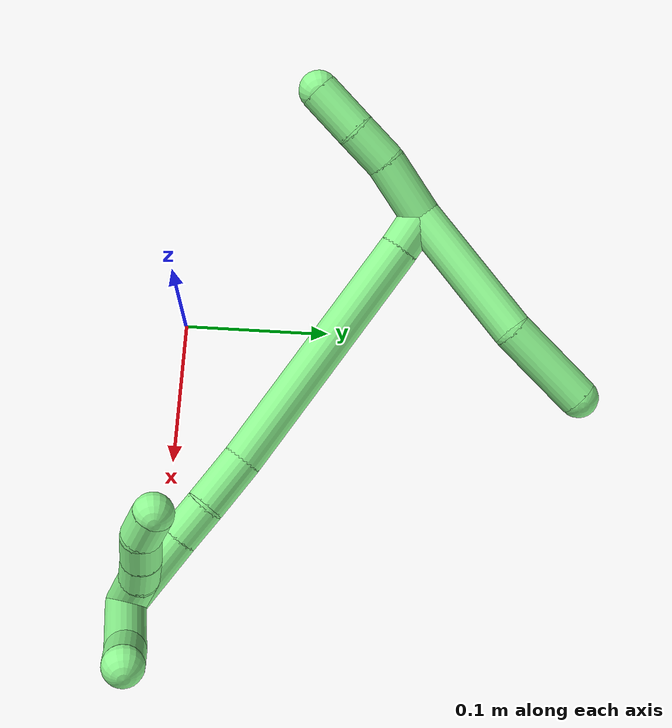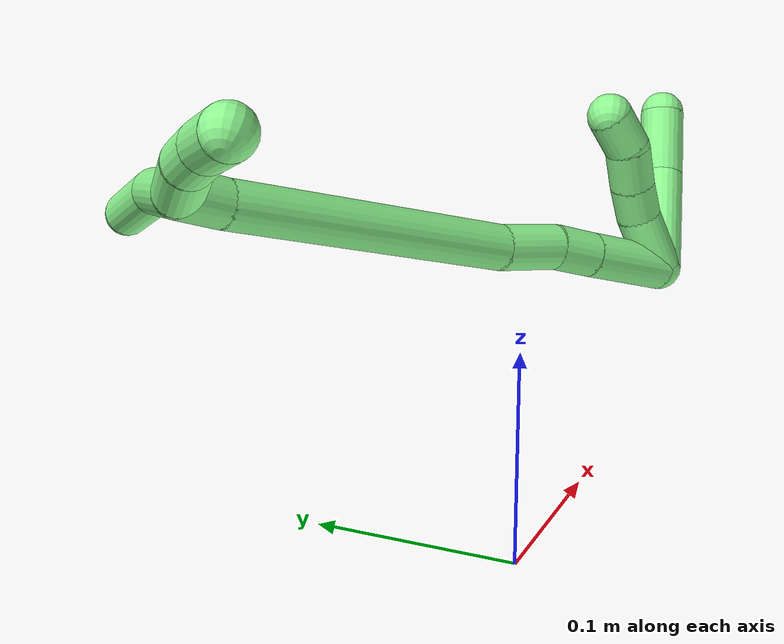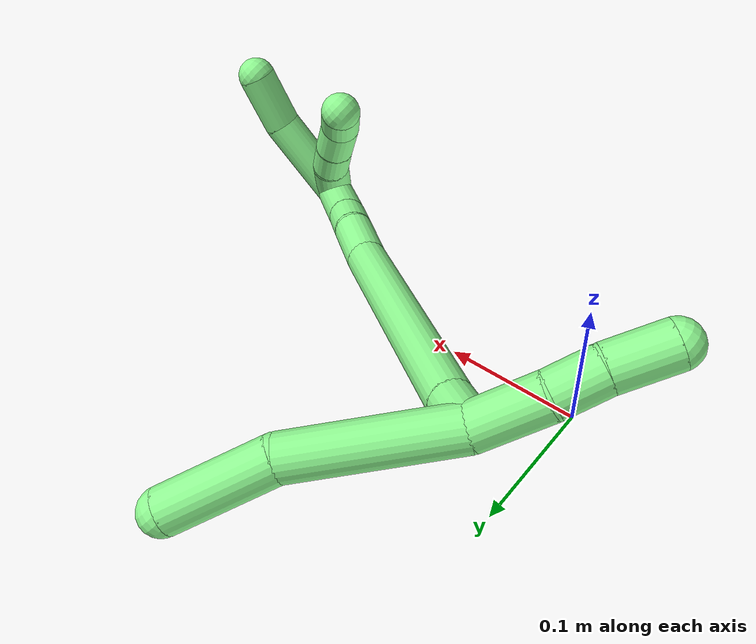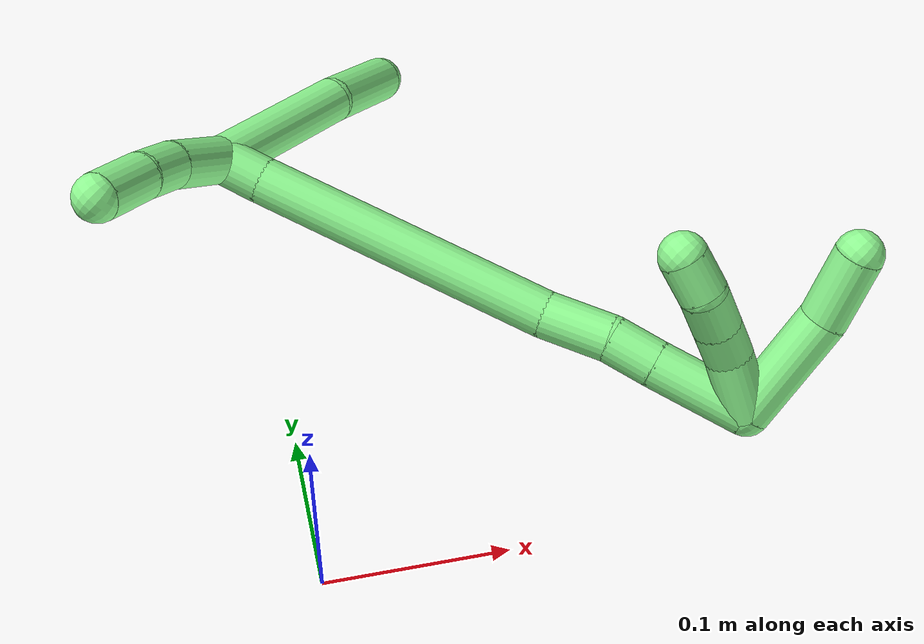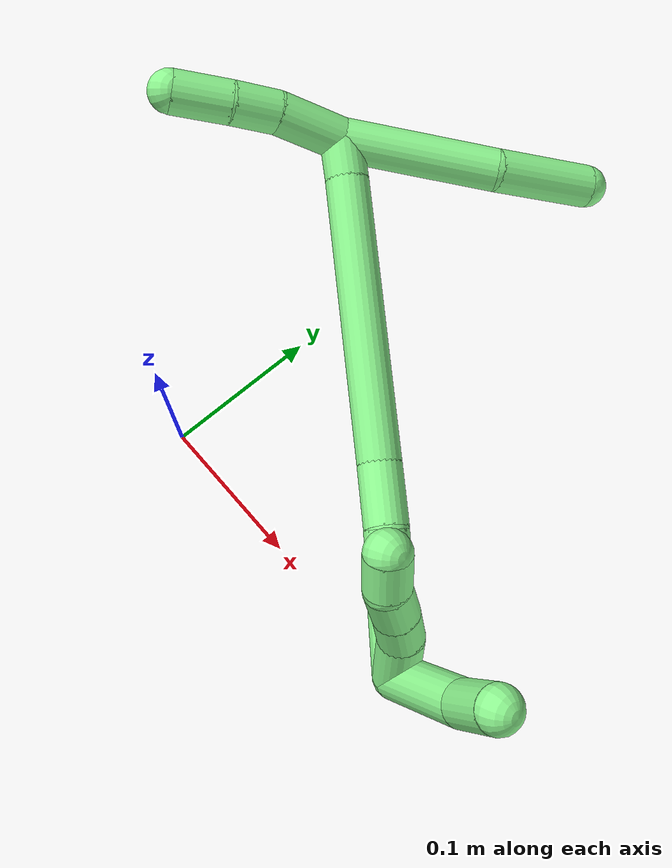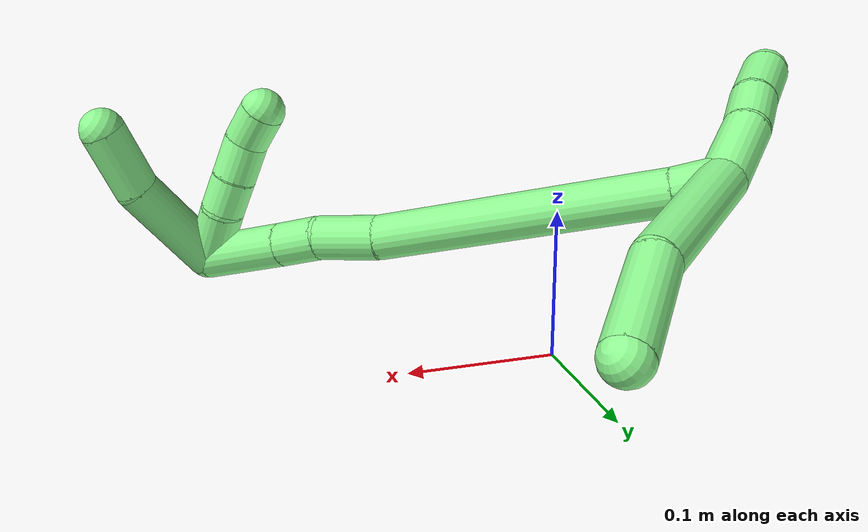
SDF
<sdf version="1.7">
 <world name="default">
  <model name="13">
   <static>0</static>
   <link name="13">
    <collision name="collision-cylinder-e_1_2_8">
     <pose>0.01698 0.032823 0.026179 -0.897535 0.384312 -0.186827</pose>
     <geometry><cylinder><radius>0.0125</radius><length>0.090577</length></cylinder></geometry>
     <surface>
      <friction><ode><mu>1.16</mu><mu2>1.16</mu2><slip1>0</slip1><slip2>0</slip2></ode></friction>
      <contact><ode><kp>1e+06</kp><kd>1</kd><max_vel>0</max_vel><min_depth>0.001</min_depth></ode></contact>
     </surface>
    </collision>
    <visual name="visual-cylinder-e_1_2_8">
     <pose>0.01698 0.032823 0.026179 -0.897535 0.384312 -0.186827</pose>
     <geometry><cylinder><radius>0.0125</radius><length>0.090577</length></cylinder></geometry>
     <material><ambient>0.564706 0.984314 0.572549 1</ambient></material>
    </visual>
    <collision name="collision-cylinder-e_2_8_6">
     <pose>0.045158 0.091253 0.062444 -1.19559 0.386471 -0.264914</pose>
     <geometry><cylinder><radius>0.0125</radius><length>0.059423</length></cylinder></geometry>
     <surface>
      <friction><ode><mu>1.16</mu><mu2>1.16</mu2><slip1>0</slip1><slip2>0</slip2></ode></friction>
      <contact><ode><kp>1e+06</kp><kd>1</kd><max_vel>0</max_vel><min_depth>0.001</min_depth></ode></contact>
     </surface>
    </collision>
    <visual name="visual-cylinder-e_2_8_6">
     <pose>0.045158 0.091253 0.062444 -1.19559 0.386471 -0.264914</pose>
     <geometry><cylinder><radius>0.0125</radius><length>0.059423</length></cylinder></geometry>
     <material><ambient>0.564706 0.984314 0.572549 1</ambient></material>
    </visual>
    <collision name="collision-cylinder-e_1_2_9">
     <pose>-0.011153 -0.015556 -0.006059 1.94221 -0.588993 -0.835121</pose>
     <geometry><cylinder><radius>0.0125</radius><length>0.040154</length></cylinder></geometry>
     <surface>
      <friction><ode><mu>1.16</mu><mu2>1.16</mu2><slip1>0</slip1><slip2>0</slip2></ode></friction>
      <contact><ode><kp>1e+06</kp><kd>1</kd><max_vel>0</max_vel><min_depth>0.001</min_depth></ode></contact>
     </surface>
    </collision>
    <visual name="visual-cylinder-e_1_2_9">
     <pose>-0.011153 -0.015556 -0.006059 1.94221 -0.588993 -0.835121</pose>
     <geometry><cylinder><radius>0.0125</radius><length>0.040154</length></cylinder></geometry>
     <material><ambient>0.564706 0.984314 0.572549 1</ambient></material>
    </visual>
    <collision name="collision-cylinder-e_2_9_10">
     <pose>-0.027613 -0.042527 -0.01628 1.92044 -0.411774 -0.580066</pose>
     <geometry><cylinder><radius>0.0125</radius><length>0.026517</length></cylinder></geometry>
     <surface>
      <friction><ode><mu>1.16</mu><mu2>1.16</mu2><slip1>0</slip1><slip2>0</slip2></ode></friction>
      <contact><ode><kp>1e+06</kp><kd>1</kd><max_vel>0</max_vel><min_depth>0.001</min_depth></ode></contact>
     </surface>
    </collision>
    <visual name="visual-cylinder-e_2_9_10">
     <pose>-0.027613 -0.042527 -0.01628 1.92044 -0.411774 -0.580066</pose>
     <geometry><cylinder><radius>0.0125</radius><length>0.026517</length></cylinder></geometry>
     <material><ambient>0.564706 0.984314 0.572549 1</ambient></material>
    </visual>
    <collision name="collision-cylinder-e_3_10_5">
     <pose>-0.039116 -0.06765 -0.02761 2.05259 -0.380988 -0.61656</pose>
     <geometry><cylinder><radius>0.0125</radius><length>0.033329</length></cylinder></geometry>
     <surface>
      <friction><ode><mu>1.16</mu><mu2>1.16</mu2><slip1>0</slip1><slip2>0</slip2></ode></friction>
      <contact><ode><kp>1e+06</kp><kd>1</kd><max_vel>0</max_vel><min_depth>0.001</min_depth></ode></contact>
     </surface>
    </collision>
    <visual name="visual-cylinder-e_3_10_5">
     <pose>-0.039116 -0.06765 -0.02761 2.05259 -0.380988 -0.61656</pose>
     <geometry><cylinder><radius>0.0125</radius><length>0.033329</length></cylinder></geometry>
     <material><ambient>0.564706 0.984314 0.572549 1</ambient></material>
    </visual>
    <collision name="collision-cylinder-e_1_2_11">
     <pose>0.010992 -0.003579 0.003724 0.76558 1.13155 0.500659</pose>
     <geometry><cylinder><radius>0.0125</radius><length>0.024289</length></cylinder></geometry>
     <surface>
      <friction><ode><mu>1.16</mu><mu2>1.16</mu2><slip1>0</slip1><slip2>0</slip2></ode></friction>
      <contact><ode><kp>1e+06</kp><kd>1</kd><max_vel>0</max_vel><min_depth>0.001</min_depth></ode></contact>
     </surface>
    </collision>
    <visual name="visual-cylinder-e_1_2_11">
     <pose>0.010992 -0.003579 0.003724 0.76558 1.13155 0.500659</pose>
     <geometry><cylinder><radius>0.0125</radius><length>0.024289</length></cylinder></geometry>
     <material><ambient>0.564706 0.984314 0.572549 1</ambient></material>
    </visual>
    <collision name="collision-cylinder-e_2_11_12">
     <pose>0.093003 -0.03586 0.034802 0.809441 1.0616 0.492687</pose>
     <geometry><cylinder><radius>0.0125</radius><length>0.162677</length></cylinder></geometry>
     <surface>
      <friction><ode><mu>1.16</mu><mu2>1.16</mu2><slip1>0</slip1><slip2>0</slip2></ode></friction>
      <contact><ode><kp>1e+06</kp><kd>1</kd><max_vel>0</max_vel><min_depth>0.001</min_depth></ode></contact>
     </surface>
    </collision>
    <visual name="visual-cylinder-e_2_11_12">
     <pose>0.093003 -0.03586 0.034802 0.809441 1.0616 0.492687</pose>
     <geometry><cylinder><radius>0.0125</radius><length>0.162677</length></cylinder></geometry>
     <material><ambient>0.564706 0.984314 0.572549 1</ambient></material>
    </visual>
    <collision name="collision-cylinder-e_3_12_13">
     <pose>0.17838 -0.072257 0.069947 0.77916 0.919268 0.400992</pose>
     <geometry><cylinder><radius>0.0125</radius><length>0.036112</length></cylinder></geometry>
     <surface>
      <friction><ode><mu>1.16</mu><mu2>1.16</mu2><slip1>0</slip1><slip2>0</slip2></ode></friction>
      <contact><ode><kp>1e+06</kp><kd>1</kd><max_vel>0</max_vel><min_depth>0.001</min_depth></ode></contact>
     </surface>
    </collision>
    <visual name="visual-cylinder-e_3_12_13">
     <pose>0.17838 -0.072257 0.069947 0.77916 0.919268 0.400992</pose>
     <geometry><cylinder><radius>0.0125</radius><length>0.036112</length></cylinder></geometry>
     <material><ambient>0.564706 0.984314 0.572549 1</ambient></material>
    </visual>
    <collision name="collision-cylinder-e_4_13_14">
     <pose>0.203976 -0.08491 0.081187 0.962951 1.07761 0.605489</pose>
     <geometry><cylinder><radius>0.0125</radius><length>0.025519</length></cylinder></geometry>
     <surface>
      <friction><ode><mu>1.16</mu><mu2>1.16</mu2><slip1>0</slip1><slip2>0</slip2></ode></friction>
      <contact><ode><kp>1e+06</kp><kd>1</kd><max_vel>0</max_vel><min_depth>0.001</min_depth></ode></contact>
     </surface>
    </collision>
    <visual name="visual-cylinder-e_4_13_14">
     <pose>0.203976 -0.08491 0.081187 0.962951 1.07761 0.605489</pose>
     <geometry><cylinder><radius>0.0125</radius><length>0.025519</length></cylinder></geometry>
     <material><ambient>0.564706 0.984314 0.572549 1</ambient></material>
    </visual>
    <collision name="collision-cylinder-e_5_14_1">
     <pose>0.237708 -0.099636 0.092335 0.903321 1.06572 0.557309</pose>
     <geometry><cylinder><radius>0.0125</radius><length>0.051403</length></cylinder></geometry>
     <surface>
      <friction><ode><mu>1.16</mu><mu2>1.16</mu2><slip1>0</slip1><slip2>0</slip2></ode></friction>
      <contact><ode><kp>1e+06</kp><kd>1</kd><max_vel>0</max_vel><min_depth>0.001</min_depth></ode></contact>
     </surface>
    </collision>
    <visual name="visual-cylinder-e_5_14_1">
     <pose>0.237708 -0.099636 0.092335 0.903321 1.06572 0.557309</pose>
     <geometry><cylinder><radius>0.0125</radius><length>0.051403</length></cylinder></geometry>
     <material><ambient>0.564706 0.984314 0.572549 1</ambient></material>
    </visual>
    <collision name="collision-cylinder-e_1_1_15">
     <pose>0.244898 -0.110532 0.107694 0.146268 -1.10235 -0.090014</pose>
     <geometry><cylinder><radius>0.0125</radius><length>0.034299</length></cylinder></geometry>
     <surface>
      <friction><ode><mu>1.16</mu><mu2>1.16</mu2><slip1>0</slip1><slip2>0</slip2></ode></friction>
      <contact><ode><kp>1e+06</kp><kd>1</kd><max_vel>0</max_vel><min_depth>0.001</min_depth></ode></contact>
     </surface>
    </collision>
    <visual name="visual-cylinder-e_1_1_15">
     <pose>0.244898 -0.110532 0.107694 0.146268 -1.10235 -0.090014</pose>
     <geometry><cylinder><radius>0.0125</radius><length>0.034299</length></cylinder></geometry>
     <material><ambient>0.564706 0.984314 0.572549 1</ambient></material>
    </visual>
    <collision name="collision-cylinder-e_2_15_16">
     <pose>0.220312 -0.114333 0.118947 0.63971 -1.12139 -0.410124</pose>
     <geometry><cylinder><radius>0.0125</radius><length>0.020615</length></cylinder></geometry>
     <surface>
      <friction><ode><mu>1.16</mu><mu2>1.16</mu2><slip1>0</slip1><slip2>0</slip2></ode></friction>
      <contact><ode><kp>1e+06</kp><kd>1</kd><max_vel>0</max_vel><min_depth>0.001</min_depth></ode></contact>
     </surface>
    </collision>
    <visual name="visual-cylinder-e_2_15_16">
     <pose>0.220312 -0.114333 0.118947 0.63971 -1.12139 -0.410124</pose>
     <geometry><cylinder><radius>0.0125</radius><length>0.020615</length></cylinder></geometry>
     <material><ambient>0.564706 0.984314 0.572549 1</ambient></material>
    </visual>
    <collision name="collision-cylinder-e_3_16_17">
     <pose>0.200719 -0.120759 0.12639 0.772403 -1.09001 -0.483394</pose>
     <geometry><cylinder><radius>0.0125</radius><length>0.023253</length></cylinder></geometry>
     <surface>
      <friction><ode><mu>1.16</mu><mu2>1.16</mu2><slip1>0</slip1><slip2>0</slip2></ode></friction>
      <contact><ode><kp>1e+06</kp><kd>1</kd><max_vel>0</max_vel><min_depth>0.001</min_depth></ode></contact>
     </surface>
    </collision>
    <visual name="visual-cylinder-e_3_16_17">
     <pose>0.200719 -0.120759 0.12639 0.772403 -1.09001 -0.483394</pose>
     <geometry><cylinder><radius>0.0125</radius><length>0.023253</length></cylinder></geometry>
     <material><ambient>0.564706 0.984314 0.572549 1</ambient></material>
    </visual>
    <collision name="collision-cylinder-e_4_17_4">
     <pose>0.179973 -0.124502 0.133436 -0.002783 -1.2738 0.002059</pose>
     <geometry><cylinder><radius>0.0125</radius><length>0.021833</length></cylinder></geometry>
     <surface>
      <friction><ode><mu>1.16</mu><mu2>1.16</mu2><slip1>0</slip1><slip2>0</slip2></ode></friction>
      <contact><ode><kp>1e+06</kp><kd>1</kd><max_vel>0</max_vel><min_depth>0.001</min_depth></ode></contact>
     </surface>
    </collision>
    <visual name="visual-cylinder-e_4_17_4">
     <pose>0.179973 -0.124502 0.133436 -0.002783 -1.2738 0.002059</pose>
     <geometry><cylinder><radius>0.0125</radius><length>0.021833</length></cylinder></geometry>
     <material><ambient>0.564706 0.984314 0.572549 1</ambient></material>
    </visual>
    <collision name="collision-cylinder-e_1_1_18">
     <pose>0.254873 -0.112469 0.130145 0.101464 -0.174233 -0.008869</pose>
     <geometry><cylinder><radius>0.0125</radius><length>0.061464</length></cylinder></geometry>
     <surface>
      <friction><ode><mu>1.16</mu><mu2>1.16</mu2><slip1>0</slip1><slip2>0</slip2></ode></friction>
      <contact><ode><kp>1e+06</kp><kd>1</kd><max_vel>0</max_vel><min_depth>0.001</min_depth></ode></contact>
     </surface>
    </collision>
    <visual name="visual-cylinder-e_1_1_18">
     <pose>0.254873 -0.112469 0.130145 0.101464 -0.174233 -0.008869</pose>
     <geometry><cylinder><radius>0.0125</radius><length>0.061464</length></cylinder></geometry>
     <material><ambient>0.564706 0.984314 0.572549 1</ambient></material>
    </visual>
    <collision name="collision-cylinder-e_2_18_3">
     <pose>0.241834 -0.119435 0.177477 0.222723 -0.411761 -0.046698</pose>
     <geometry><cylinder><radius>0.0125</radius><length>0.038536</length></cylinder></geometry>
     <surface>
      <friction><ode><mu>1.16</mu><mu2>1.16</mu2><slip1>0</slip1><slip2>0</slip2></ode></friction>
      <contact><ode><kp>1e+06</kp><kd>1</kd><max_vel>0</max_vel><min_depth>0.001</min_depth></ode></contact>
     </surface>
    </collision>
    <visual name="visual-cylinder-e_2_18_3">
     <pose>0.241834 -0.119435 0.177477 0.222723 -0.411761 -0.046698</pose>
     <geometry><cylinder><radius>0.0125</radius><length>0.038536</length></cylinder></geometry>
     <material><ambient>0.564706 0.984314 0.572549 1</ambient></material>
    </visual>
    <collision name="collision-sphere-3">
     <pose>0.234122 -0.123335 0.194698 0 -0 0</pose>
     <geometry><sphere><radius>0.0125</radius></sphere></geometry>
     <surface>
      <friction><ode><mu>1.16</mu><mu2>1.16</mu2><slip1>0</slip1><slip2>0</slip2></ode></friction>
      <contact><ode><kp>1e+06</kp><kd>1</kd><max_vel>0</max_vel><min_depth>0.001</min_depth></ode></contact>
     </surface>
    </collision>
    <visual name="visual-sphere-3">
     <pose>0.234122 -0.123335 0.194698 0 -0 0</pose>
     <geometry><sphere><radius>0.0125</radius></sphere></geometry>
     <material><ambient>0.564706 0.984314 0.572549 1</ambient></material>
    </visual>
    <collision name="collision-sphere-5">
     <pose>-0.045313 -0.081359 -0.034778 0 -0 0</pose>
     <geometry><sphere><radius>0.0125</radius></sphere></geometry>
     <surface>
      <friction><ode><mu>1.16</mu><mu2>1.16</mu2><slip1>0</slip1><slip2>0</slip2></ode></friction>
      <contact><ode><kp>1e+06</kp><kd>1</kd><max_vel>0</max_vel><min_depth>0.001</min_depth></ode></contact>
     </surface>
    </collision>
    <visual name="visual-sphere-5">
     <pose>-0.045313 -0.081359 -0.034778 0 -0 0</pose>
     <geometry><sphere><radius>0.0125</radius></sphere></geometry>
     <material><ambient>0.564706 0.984314 0.572549 1</ambient></material>
    </visual>
    <collision name="collision-sphere-10">
     <pose>-0.03292 -0.053942 -0.020442 0 -0 0</pose>
     <geometry><sphere><radius>0.0125</radius></sphere></geometry>
     <surface>
      <friction><ode><mu>1.16</mu><mu2>1.16</mu2><slip1>0</slip1><slip2>0</slip2></ode></friction>
      <contact><ode><kp>1e+06</kp><kd>1</kd><max_vel>0</max_vel><min_depth>0.001</min_depth></ode></contact>
     </surface>
    </collision>
    <visual name="visual-sphere-10">
     <pose>-0.03292 -0.053942 -0.020442 0 -0 0</pose>
     <geometry><sphere><radius>0.0125</radius></sphere></geometry>
     <material><ambient>0.564706 0.984314 0.572549 1</ambient></material>
    </visual>
    <collision name="collision-sphere-6">
     <pose>0.056357 0.116858 0.072529 0 -0 0</pose>
     <geometry><sphere><radius>0.0125</radius></sphere></geometry>
     <surface>
      <friction><ode><mu>1.16</mu><mu2>1.16</mu2><slip1>0</slip1><slip2>0</slip2></ode></friction>
      <contact><ode><kp>1e+06</kp><kd>1</kd><max_vel>0</max_vel><min_depth>0.001</min_depth></ode></contact>
     </surface>
    </collision>
    <visual name="visual-sphere-6">
     <pose>0.056357 0.116858 0.072529 0 -0 0</pose>
     <geometry><sphere><radius>0.0125</radius></sphere></geometry>
     <material><ambient>0.564706 0.984314 0.572549 1</ambient></material>
    </visual>
    <collision name="collision-sphere-9">
     <pose>-0.022307 -0.031112 -0.012118 0 -0 0</pose>
     <geometry><sphere><radius>0.0125</radius></sphere></geometry>
     <surface>
      <friction><ode><mu>1.16</mu><mu2>1.16</mu2><slip1>0</slip1><slip2>0</slip2></ode></friction>
      <contact><ode><kp>1e+06</kp><kd>1</kd><max_vel>0</max_vel><min_depth>0.001</min_depth></ode></contact>
     </surface>
    </collision>
    <visual name="visual-sphere-9">
     <pose>-0.022307 -0.031112 -0.012118 0 -0 0</pose>
     <geometry><sphere><radius>0.0125</radius></sphere></geometry>
     <material><ambient>0.564706 0.984314 0.572549 1</ambient></material>
    </visual>
    <collision name="collision-sphere-2">
     <geometry><sphere><radius>0.0125</radius></sphere></geometry>
     <surface>
      <friction><ode><mu>1.16</mu><mu2>1.16</mu2><slip1>0</slip1><slip2>0</slip2></ode></friction>
      <contact><ode><kp>1e+06</kp><kd>1</kd><max_vel>0</max_vel><min_depth>0.001</min_depth></ode></contact>
     </surface>
    </collision>
    <visual name="visual-sphere-2">
     <geometry><sphere><radius>0.0125</radius></sphere></geometry>
     <material><ambient>0.564706 0.984314 0.572549 1</ambient></material>
    </visual>
    <collision name="collision-sphere-8">
     <pose>0.033959 0.065647 0.052358 0 -0 0</pose>
     <geometry><sphere><radius>0.0125</radius></sphere></geometry>
     <surface>
      <friction><ode><mu>1.16</mu><mu2>1.16</mu2><slip1>0</slip1><slip2>0</slip2></ode></friction>
      <contact><ode><kp>1e+06</kp><kd>1</kd><max_vel>0</max_vel><min_depth>0.001</min_depth></ode></contact>
     </surface>
    </collision>
    <visual name="visual-sphere-8">
     <pose>0.033959 0.065647 0.052358 0 -0 0</pose>
     <geometry><sphere><radius>0.0125</radius></sphere></geometry>
     <material><ambient>0.564706 0.984314 0.572549 1</ambient></material>
    </visual>
    <collision name="collision-sphere-11">
     <pose>0.021984 -0.007158 0.007447 0 -0 0</pose>
     <geometry><sphere><radius>0.0125</radius></sphere></geometry>
     <surface>
      <friction><ode><mu>1.16</mu><mu2>1.16</mu2><slip1>0</slip1><slip2>0</slip2></ode></friction>
      <contact><ode><kp>1e+06</kp><kd>1</kd><max_vel>0</max_vel><min_depth>0.001</min_depth></ode></contact>
     </surface>
    </collision>
    <visual name="visual-sphere-11">
     <pose>0.021984 -0.007158 0.007447 0 -0 0</pose>
     <geometry><sphere><radius>0.0125</radius></sphere></geometry>
     <material><ambient>0.564706 0.984314 0.572549 1</ambient></material>
    </visual>
    <collision name="collision-sphere-12">
     <pose>0.164023 -0.064563 0.062157 0 -0 0</pose>
     <geometry><sphere><radius>0.0125</radius></sphere></geometry>
     <surface>
      <friction><ode><mu>1.16</mu><mu2>1.16</mu2><slip1>0</slip1><slip2>0</slip2></ode></friction>
      <contact><ode><kp>1e+06</kp><kd>1</kd><max_vel>0</max_vel><min_depth>0.001</min_depth></ode></contact>
     </surface>
    </collision>
    <visual name="visual-sphere-12">
     <pose>0.164023 -0.064563 0.062157 0 -0 0</pose>
     <geometry><sphere><radius>0.0125</radius></sphere></geometry>
     <material><ambient>0.564706 0.984314 0.572549 1</ambient></material>
    </visual>
    <collision name="collision-sphere-13">
     <pose>0.192737 -0.079951 0.077737 0 -0 0</pose>
     <geometry><sphere><radius>0.0125</radius></sphere></geometry>
     <surface>
      <friction><ode><mu>1.16</mu><mu2>1.16</mu2><slip1>0</slip1><slip2>0</slip2></ode></friction>
      <contact><ode><kp>1e+06</kp><kd>1</kd><max_vel>0</max_vel><min_depth>0.001</min_depth></ode></contact>
     </surface>
    </collision>
    <visual name="visual-sphere-13">
     <pose>0.192737 -0.079951 0.077737 0 -0 0</pose>
     <geometry><sphere><radius>0.0125</radius></sphere></geometry>
     <material><ambient>0.564706 0.984314 0.572549 1</ambient></material>
    </visual>
    <collision name="collision-sphere-14">
     <pose>0.215215 -0.089868 0.084637 0 -0 0</pose>
     <geometry><sphere><radius>0.0125</radius></sphere></geometry>
     <surface>
      <friction><ode><mu>1.16</mu><mu2>1.16</mu2><slip1>0</slip1><slip2>0</slip2></ode></friction>
      <contact><ode><kp>1e+06</kp><kd>1</kd><max_vel>0</max_vel><min_depth>0.001</min_depth></ode></contact>
     </surface>
    </collision>
    <visual name="visual-sphere-14">
     <pose>0.215215 -0.089868 0.084637 0 -0 0</pose>
     <geometry><sphere><radius>0.0125</radius></sphere></geometry>
     <material><ambient>0.564706 0.984314 0.572549 1</ambient></material>
    </visual>
    <collision name="collision-sphere-1">
     <pose>0.2602 -0.109403 0.100033 0 -0 0</pose>
     <geometry><sphere><radius>0.0125</radius></sphere></geometry>
     <surface>
      <friction><ode><mu>1.16</mu><mu2>1.16</mu2><slip1>0</slip1><slip2>0</slip2></ode></friction>
      <contact><ode><kp>1e+06</kp><kd>1</kd><max_vel>0</max_vel><min_depth>0.001</min_depth></ode></contact>
     </surface>
    </collision>
    <visual name="visual-sphere-1">
     <pose>0.2602 -0.109403 0.100033 0 -0 0</pose>
     <geometry><sphere><radius>0.0125</radius></sphere></geometry>
     <material><ambient>0.564706 0.984314 0.572549 1</ambient></material>
    </visual>
    <collision name="collision-sphere-18">
     <pose>0.249545 -0.115534 0.160256 0 -0 0</pose>
     <geometry><sphere><radius>0.0125</radius></sphere></geometry>
     <surface>
      <friction><ode><mu>1.16</mu><mu2>1.16</mu2><slip1>0</slip1><slip2>0</slip2></ode></friction>
      <contact><ode><kp>1e+06</kp><kd>1</kd><max_vel>0</max_vel><min_depth>0.001</min_depth></ode></contact>
     </surface>
    </collision>
    <visual name="visual-sphere-18">
     <pose>0.249545 -0.115534 0.160256 0 -0 0</pose>
     <geometry><sphere><radius>0.0125</radius></sphere></geometry>
     <material><ambient>0.564706 0.984314 0.572549 1</ambient></material>
    </visual>
    <collision name="collision-sphere-15">
     <pose>0.229596 -0.11166 0.115354 0 -0 0</pose>
     <geometry><sphere><radius>0.0125</radius></sphere></geometry>
     <surface>
      <friction><ode><mu>1.16</mu><mu2>1.16</mu2><slip1>0</slip1><slip2>0</slip2></ode></friction>
      <contact><ode><kp>1e+06</kp><kd>1</kd><max_vel>0</max_vel><min_depth>0.001</min_depth></ode></contact>
     </surface>
    </collision>
    <visual name="visual-sphere-15">
     <pose>0.229596 -0.11166 0.115354 0 -0 0</pose>
     <geometry><sphere><radius>0.0125</radius></sphere></geometry>
     <material><ambient>0.564706 0.984314 0.572549 1</ambient></material>
    </visual>
    <collision name="collision-sphere-16">
     <pose>0.211027 -0.117006 0.122539 0 -0 0</pose>
     <geometry><sphere><radius>0.0125</radius></sphere></geometry>
     <surface>
      <friction><ode><mu>1.16</mu><mu2>1.16</mu2><slip1>0</slip1><slip2>0</slip2></ode></friction>
      <contact><ode><kp>1e+06</kp><kd>1</kd><max_vel>0</max_vel><min_depth>0.001</min_depth></ode></contact>
     </surface>
    </collision>
    <visual name="visual-sphere-16">
     <pose>0.211027 -0.117006 0.122539 0 -0 0</pose>
     <geometry><sphere><radius>0.0125</radius></sphere></geometry>
     <material><ambient>0.564706 0.984314 0.572549 1</ambient></material>
    </visual>
    <collision name="collision-sphere-17">
     <pose>0.190411 -0.124511 0.130242 0 -0 0</pose>
     <geometry><sphere><radius>0.0125</radius></sphere></geometry>
     <surface>
      <friction><ode><mu>1.16</mu><mu2>1.16</mu2><slip1>0</slip1><slip2>0</slip2></ode></friction>
      <contact><ode><kp>1e+06</kp><kd>1</kd><max_vel>0</max_vel><min_depth>0.001</min_depth></ode></contact>
     </surface>
    </collision>
    <visual name="visual-sphere-17">
     <pose>0.190411 -0.124511 0.130242 0 -0 0</pose>
     <geometry><sphere><radius>0.0125</radius></sphere></geometry>
     <material><ambient>0.564706 0.984314 0.572549 1</ambient></material>
    </visual>
    <collision name="collision-sphere-4">
     <pose>0.169534 -0.124493 0.136631 0 -0 0</pose>
     <geometry><sphere><radius>0.0125</radius></sphere></geometry>
     <surface>
      <friction><ode><mu>1.16</mu><mu2>1.16</mu2><slip1>0</slip1><slip2>0</slip2></ode></friction>
      <contact><ode><kp>1e+06</kp><kd>1</kd><max_vel>0</max_vel><min_depth>0.001</min_depth></ode></contact>
     </surface>
    </collision>
    <visual name="visual-sphere-4">
     <pose>0.169534 -0.124493 0.136631 0 -0 0</pose>
     <geometry><sphere><radius>0.0125</radius></sphere></geometry>
     <material><ambient>0.564706 0.984314 0.572549 1</ambient></material>
    </visual>
    <inertial>
     <pose>0.116697 -0.046159 0.061892 0 -0 0</pose>
     <mass>0.75</mass>
     <inertia>
      <ixx>0.000361</ixx>
      <ixy>0</ixy>
      <ixz>0</ixz>
      <iyy>0.000498</iyy>
      <iyz>0</iyz>
      <izz>-0.000239</izz>
     </inertia>
    </inertial>
   </link>
   <pose>-0.018405 0.159178 0.160336 -0.544709 0.744154 -0.473419</pose>
  </model>
 </world>
</sdf>
